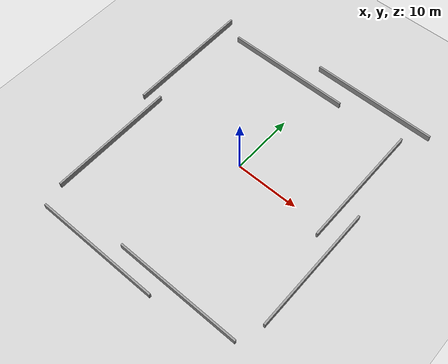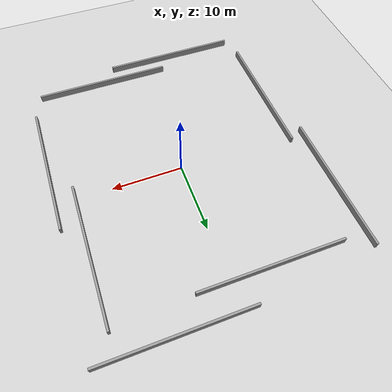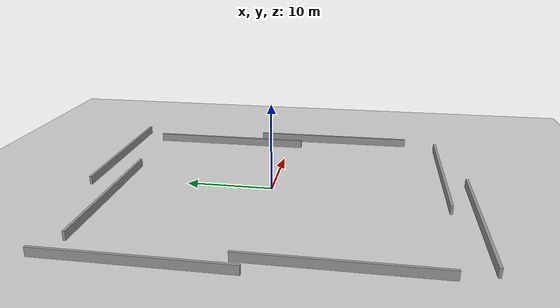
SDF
<sdf version="1.6">
 <world name="default">
  <include><uri>model://ground_plane</uri></include>
  <include><uri>model://sun</uri></include>
  <include>
   <uri>model://wallsatGasStation</uri>
   <name>walls_at_gas_station</name>
   <pose>0 0 0.5 0 0 0</pose>
  </include>
 </world>
</sdf>

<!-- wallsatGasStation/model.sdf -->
<sdf version='1.6'>
  <model name='wallsatGasStation'>
    <link name='link_0'>
      <pose frame=''>6.31651 -19.7182 0 0 -0 0</pose>
      <inertial>
        <mass>1</mass>
        <inertia>
          <ixx>0.166667</ixx>
          <ixy>0</ixy>
          <ixz>0</ixz>
          <iyy>0.166667</iyy>
          <iyz>0</iyz>
          <izz>0.166667</izz>
        </inertia>
        <pose frame=''>0 0 0 0 -0 0</pose>
      </inertial>
      <gravity>1</gravity>
      <self_collide>0</self_collide>
      <kinematic>0</kinematic>
      <visual name='visual'>
        <pose frame=''>0 0 0 0 -0 0</pose>
        <geometry>
          <box>
            <size>20 0.3 1</size>
          </box>
        </geometry>
        <material>
          <lighting>1</lighting>
          <script>
            <uri>file://media/materials/scripts/gazebo.material</uri>
            <name>Gazebo/Grey</name>
          </script>
          <shader type='pixel'>
            <normal_map>__default__</normal_map>
          </shader>
          <ambient>0.3 0.3 0.3 1</ambient>
          <diffuse>0.7 0.7 0.7 1</diffuse>
          <specular>0.01 0.01 0.01 1</specular>
          <emissive>0 0 0 1</emissive>
        </material>
        <transparency>0</transparency>
        <cast_shadows>1</cast_shadows>
      </visual>
      <collision name='collision'>
        <laser_retro>0</laser_retro>
        <max_contacts>10</max_contacts>
        <pose frame=''>0 0 0 0 -0 0</pose>
        <geometry>
          <box>
            <size>20 0.3 1</size>
          </box>
        </geometry>
        <surface>
          <friction>
            <ode>
              <mu>1</mu>
              <mu2>1</mu2>
              <fdir1>0 0 0</fdir1>
              <slip1>0</slip1>
              <slip2>0</slip2>
            </ode>
            <torsional>
              <coefficient>1</coefficient>
              <patch_radius>0</patch_radius>
              <surface_radius>0</surface_radius>
              <use_patch_radius>1</use_patch_radius>
              <ode>
                <slip>0</slip>
              </ode>
            </torsional>
          </friction>
          <bounce>
            <restitution_coefficient>0</restitution_coefficient>
            <threshold>1e+06</threshold>
          </bounce>
          <contact>
            <collide_without_contact>0</collide_without_contact>
            <collide_without_contact_bitmask>1</collide_without_contact_bitmask>
            <collide_bitmask>1</collide_bitmask>
            <ode>
              <soft_cfm>0</soft_cfm>
              <soft_erp>0.2</soft_erp>
              <kp>1e+13</kp>
              <kd>1</kd>
              <max_vel>0.01</max_vel>
              <min_depth>0</min_depth>
            </ode>
            <bullet>
              <split_impulse>1</split_impulse>
              <split_impulse_penetration_threshold>-0.01</split_impulse_penetration_threshold>
              <soft_cfm>0</soft_cfm>
              <soft_erp>0.2</soft_erp>
              <kp>1e+13</kp>
              <kd>1</kd>
            </bullet>
          </contact>
        </surface>
      </collision>
    </link>
    <link name='link_0_clone'>
      <pose frame=''>-5.83719 -22.2942 0 0 -0 0</pose>
      <inertial>
        <mass>1</mass>
        <inertia>
          <ixx>0.166667</ixx>
          <ixy>0</ixy>
          <ixz>0</ixz>
          <iyy>0.166667</iyy>
          <iyz>0</iyz>
          <izz>0.166667</izz>
        </inertia>
        <pose frame=''>0 0 0 0 -0 0</pose>
      </inertial>
      <self_collide>0</self_collide>
      <kinematic>0</kinematic>
      <visual name='visual'>
        <pose frame=''>0 0 0 0 -0 0</pose>
        <geometry>
          <box>
            <size>20 0.3 1</size>
          </box>
        </geometry>
        <material>
          <lighting>1</lighting>
          <script>
            <uri>file://media/materials/scripts/gazebo.material</uri>
            <name>Gazebo/Grey</name>
          </script>
          <shader type='pixel'>
            <normal_map>__default__</normal_map>
          </shader>
          <ambient>0.3 0.3 0.3 1</ambient>
          <diffuse>0.7 0.7 0.7 1</diffuse>
          <specular>0.01 0.01 0.01 1</specular>
          <emissive>0 0 0 1</emissive>
        </material>
        <transparency>0</transparency>
        <cast_shadows>1</cast_shadows>
      </visual>
      <collision name='collision'>
        <laser_retro>0</laser_retro>
        <max_contacts>10</max_contacts>
        <pose frame=''>0 0 0 0 -0 0</pose>
        <geometry>
          <box>
            <size>20 0.3 1</size>
          </box>
        </geometry>
        <surface>
          <friction>
            <ode>
              <mu>1</mu>
              <mu2>1</mu2>
              <fdir1>0 0 0</fdir1>
              <slip1>0</slip1>
              <slip2>0</slip2>
            </ode>
            <torsional>
              <coefficient>1</coefficient>
              <patch_radius>0</patch_radius>
              <surface_radius>0</surface_radius>
              <use_patch_radius>1</use_patch_radius>
              <ode>
                <slip>0</slip>
              </ode>
            </torsional>
          </friction>
          <bounce>
            <restitution_coefficient>0</restitution_coefficient>
            <threshold>1e+06</threshold>
          </bounce>
          <contact>
            <collide_without_contact>0</collide_without_contact>
            <collide_without_contact_bitmask>1</collide_without_contact_bitmask>
            <collide_bitmask>1</collide_bitmask>
            <ode>
              <soft_cfm>0</soft_cfm>
              <soft_erp>0.2</soft_erp>
              <kp>1e+13</kp>
              <kd>1</kd>
              <max_vel>0.01</max_vel>
              <min_depth>0</min_depth>
            </ode>
            <bullet>
              <split_impulse>1</split_impulse>
              <split_impulse_penetration_threshold>-0.01</split_impulse_penetration_threshold>
              <soft_cfm>0</soft_cfm>
              <soft_erp>0.2</soft_erp>
              <kp>1e+13</kp>
              <kd>1</kd>
            </bullet>
          </contact>
        </surface>
      </collision>
    </link>
    <link name='link_0_clone_0'>
      <pose frame=''>-5.5279 17.5634 0 0 -0 0</pose>
      <inertial>
        <mass>1</mass>
        <inertia>
          <ixx>0.166667</ixx>
          <ixy>0</ixy>
          <ixz>0</ixz>
          <iyy>0.166667</iyy>
          <iyz>0</iyz>
          <izz>0.166667</izz>
        </inertia>
        <pose frame=''>0 0 0 0 -0 0</pose>
      </inertial>
      <self_collide>0</self_collide>
      <kinematic>0</kinematic>
      <visual name='visual'>
        <pose frame=''>0 0 0 0 -0 0</pose>
        <geometry>
          <box>
            <size>20 0.3 1</size>
          </box>
        </geometry>
        <material>
          <lighting>1</lighting>
          <script>
            <uri>file://media/materials/scripts/gazebo.material</uri>
            <name>Gazebo/Grey</name>
          </script>
          <shader type='pixel'>
            <normal_map>__default__</normal_map>
          </shader>
          <ambient>0.3 0.3 0.3 1</ambient>
          <diffuse>0.7 0.7 0.7 1</diffuse>
          <specular>0.01 0.01 0.01 1</specular>
          <emissive>0 0 0 1</emissive>
        </material>
        <transparency>0</transparency>
        <cast_shadows>1</cast_shadows>
      </visual>
      <collision name='collision'>
        <laser_retro>0</laser_retro>
        <max_contacts>10</max_contacts>
        <pose frame=''>0 0 0 0 -0 0</pose>
        <geometry>
          <box>
            <size>20 0.3 1</size>
          </box>
        </geometry>
        <surface>
          <friction>
            <ode>
              <mu>1</mu>
              <mu2>1</mu2>
              <fdir1>0 0 0</fdir1>
              <slip1>0</slip1>
              <slip2>0</slip2>
            </ode>
            <torsional>
              <coefficient>1</coefficient>
              <patch_radius>0</patch_radius>
              <surface_radius>0</surface_radius>
              <use_patch_radius>1</use_patch_radius>
              <ode>
                <slip>0</slip>
              </ode>
            </torsional>
          </friction>
          <bounce>
            <restitution_coefficient>0</restitution_coefficient>
            <threshold>1e+06</threshold>
          </bounce>
          <contact>
            <collide_without_contact>0</collide_without_contact>
            <collide_without_contact_bitmask>1</collide_without_contact_bitmask>
            <collide_bitmask>1</collide_bitmask>
            <ode>
              <soft_cfm>0</soft_cfm>
              <soft_erp>0.2</soft_erp>
              <kp>1e+13</kp>
              <kd>1</kd>
              <max_vel>0.01</max_vel>
              <min_depth>0</min_depth>
            </ode>
            <bullet>
              <split_impulse>1</split_impulse>
              <split_impulse_penetration_threshold>-0.01</split_impulse_penetration_threshold>
              <soft_cfm>0</soft_cfm>
              <soft_erp>0.2</soft_erp>
              <kp>1e+13</kp>
              <kd>1</kd>
            </bullet>
          </contact>
        </surface>
      </collision>
    </link>
    <link name='link_0_clone_1'>
      <pose frame=''>7.9053 21.2295 0 0 -0 0</pose>
      <inertial>
        <mass>1</mass>
        <inertia>
          <ixx>0.166667</ixx>
          <ixy>0</ixy>
          <ixz>0</ixz>
          <iyy>0.166667</iyy>
          <iyz>0</iyz>
          <izz>0.166667</izz>
        </inertia>
        <pose frame=''>0 0 0 0 -0 0</pose>
      </inertial>
      <self_collide>0</self_collide>
      <kinematic>0</kinematic>
      <visual name='visual'>
        <pose frame=''>0 0 0 0 -0 0</pose>
        <geometry>
          <box>
            <size>20 0.3 1</size>
          </box>
        </geometry>
        <material>
          <lighting>1</lighting>
          <script>
            <uri>file://media/materials/scripts/gazebo.material</uri>
            <name>Gazebo/Grey</name>
          </script>
          <shader type='pixel'>
            <normal_map>__default__</normal_map>
          </shader>
          <ambient>0.3 0.3 0.3 1</ambient>
          <diffuse>0.7 0.7 0.7 1</diffuse>
          <specular>0.01 0.01 0.01 1</specular>
          <emissive>0 0 0 1</emissive>
        </material>
        <transparency>0</transparency>
        <cast_shadows>1</cast_shadows>
      </visual>
      <collision name='collision'>
        <laser_retro>0</laser_retro>
        <max_contacts>10</max_contacts>
        <pose frame=''>0 0 0 0 -0 0</pose>
        <geometry>
          <box>
            <size>20 0.3 1</size>
          </box>
        </geometry>
        <surface>
          <friction>
            <ode>
              <mu>1</mu>
              <mu2>1</mu2>
              <fdir1>0 0 0</fdir1>
              <slip1>0</slip1>
              <slip2>0</slip2>
            </ode>
            <torsional>
              <coefficient>1</coefficient>
              <patch_radius>0</patch_radius>
              <surface_radius>0</surface_radius>
              <use_patch_radius>1</use_patch_radius>
              <ode>
                <slip>0</slip>
              </ode>
            </torsional>
          </friction>
          <bounce>
            <restitution_coefficient>0</restitution_coefficient>
            <threshold>1e+06</threshold>
          </bounce>
          <contact>
            <collide_without_contact>0</collide_without_contact>
            <collide_without_contact_bitmask>1</collide_without_contact_bitmask>
            <collide_bitmask>1</collide_bitmask>
            <ode>
              <soft_cfm>0</soft_cfm>
              <soft_erp>0.2</soft_erp>
              <kp>1e+13</kp>
              <kd>1</kd>
              <max_vel>0.01</max_vel>
              <min_depth>0</min_depth>
            </ode>
            <bullet>
              <split_impulse>1</split_impulse>
              <split_impulse_penetration_threshold>-0.01</split_impulse_penetration_threshold>
              <soft_cfm>0</soft_cfm>
              <soft_erp>0.2</soft_erp>
              <kp>1e+13</kp>
              <kd>1</kd>
            </bullet>
          </contact>
        </surface>
      </collision>
    </link>
    <link name='link_0_clone_2'>
      <pose frame=''>14.9811 8.30761 0 0 -0 0</pose>
      <inertial>
        <mass>1</mass>
        <inertia>
          <ixx>0.166667</ixx>
          <ixy>0</ixy>
          <ixz>0</ixz>
          <iyy>0.166667</iyy>
          <iyz>0</iyz>
          <izz>0.166667</izz>
        </inertia>
        <pose frame=''>0 0 0 0 -0 0</pose>
      </inertial>
      <self_collide>0</self_collide>
      <kinematic>0</kinematic>
      <gravity>1</gravity>
      <visual name='visual'>
        <pose frame=''>0 0 0 0 -0 1.57</pose>
        <geometry>
          <box>
            <size>20 0.3 1</size>
          </box>
        </geometry>
        <material>
          <lighting>1</lighting>
          <script>
            <uri>file://media/materials/scripts/gazebo.material</uri>
            <name>Gazebo/Grey</name>
          </script>
          <shader type='pixel'>
            <normal_map>__default__</normal_map>
          </shader>
          <ambient>0.3 0.3 0.3 1</ambient>
          <diffuse>0.7 0.7 0.7 1</diffuse>
          <specular>0.01 0.01 0.01 1</specular>
          <emissive>0 0 0 1</emissive>
        </material>
        <transparency>0</transparency>
        <cast_shadows>1</cast_shadows>
      </visual>
      <collision name='collision'>
        <laser_retro>0</laser_retro>
        <max_contacts>10</max_contacts>
        <pose frame=''>0 0 0 0 -0 1.57</pose>
        <geometry>
          <box>
            <size>20 0.3 1</size>
          </box>
        </geometry>
        <surface>
          <friction>
            <ode>
              <mu>1</mu>
              <mu2>1</mu2>
              <fdir1>0 0 0</fdir1>
              <slip1>0</slip1>
              <slip2>0</slip2>
            </ode>
            <torsional>
              <coefficient>1</coefficient>
              <patch_radius>0</patch_radius>
              <surface_radius>0</surface_radius>
              <use_patch_radius>1</use_patch_radius>
              <ode>
                <slip>0</slip>
              </ode>
            </torsional>
          </friction>
          <bounce>
            <restitution_coefficient>0</restitution_coefficient>
            <threshold>1e+06</threshold>
          </bounce>
          <contact>
            <collide_without_contact>0</collide_without_contact>
            <collide_without_contact_bitmask>1</collide_without_contact_bitmask>
            <collide_bitmask>1</collide_bitmask>
            <ode>
              <soft_cfm>0</soft_cfm>
              <soft_erp>0.2</soft_erp>
              <kp>1e+13</kp>
              <kd>1</kd>
              <max_vel>0.01</max_vel>
              <min_depth>0</min_depth>
            </ode>
            <bullet>
              <split_impulse>1</split_impulse>
              <split_impulse_penetration_threshold>-0.01</split_impulse_penetration_threshold>
              <soft_cfm>0</soft_cfm>
              <soft_erp>0.2</soft_erp>
              <kp>1e+13</kp>
              <kd>1</kd>
            </bullet>
          </contact>
        </surface>
      </collision>
    </link>
    <link name='link_0_clone_2_clone'>
      <pose frame=''>17.6701 -5.85679 0 0 -0 0</pose>
      <inertial>
        <mass>1</mass>
        <inertia>
          <ixx>0.166667</ixx>
          <ixy>0</ixy>
          <ixz>0</ixz>
          <iyy>0.166667</iyy>
          <iyz>0</iyz>
          <izz>0.166667</izz>
        </inertia>
        <pose frame=''>0 0 0 0 -0 0</pose>
      </inertial>
      <self_collide>0</self_collide>
      <kinematic>0</kinematic>
      <visual name='visual'>
        <pose frame=''>0 0 0 0 -0 1.57</pose>
        <geometry>
          <box>
            <size>20 0.3 1</size>
          </box>
        </geometry>
        <material>
          <lighting>1</lighting>
          <script>
            <uri>file://media/materials/scripts/gazebo.material</uri>
            <name>Gazebo/Grey</name>
          </script>
          <shader type='pixel'>
            <normal_map>__default__</normal_map>
          </shader>
          <ambient>0.3 0.3 0.3 1</ambient>
          <diffuse>0.7 0.7 0.7 1</diffuse>
          <specular>0.01 0.01 0.01 1</specular>
          <emissive>0 0 0 1</emissive>
        </material>
        <transparency>0</transparency>
        <cast_shadows>1</cast_shadows>
      </visual>
      <collision name='collision'>
        <laser_retro>0</laser_retro>
        <max_contacts>10</max_contacts>
        <pose frame=''>0 0 0 0 -0 1.57</pose>
        <geometry>
          <box>
            <size>20 0.3 1</size>
          </box>
        </geometry>
        <surface>
          <friction>
            <ode>
              <mu>1</mu>
              <mu2>1</mu2>
              <fdir1>0 0 0</fdir1>
              <slip1>0</slip1>
              <slip2>0</slip2>
            </ode>
            <torsional>
              <coefficient>1</coefficient>
              <patch_radius>0</patch_radius>
              <surface_radius>0</surface_radius>
              <use_patch_radius>1</use_patch_radius>
              <ode>
                <slip>0</slip>
              </ode>
            </torsional>
          </friction>
          <bounce>
            <restitution_coefficient>0</restitution_coefficient>
            <threshold>1e+06</threshold>
          </bounce>
          <contact>
            <collide_without_contact>0</collide_without_contact>
            <collide_without_contact_bitmask>1</collide_without_contact_bitmask>
            <collide_bitmask>1</collide_bitmask>
            <ode>
              <soft_cfm>0</soft_cfm>
              <soft_erp>0.2</soft_erp>
              <kp>1e+13</kp>
              <kd>1</kd>
              <max_vel>0.01</max_vel>
              <min_depth>0</min_depth>
            </ode>
            <bullet>
              <split_impulse>1</split_impulse>
              <split_impulse_penetration_threshold>-0.01</split_impulse_penetration_threshold>
              <soft_cfm>0</soft_cfm>
              <soft_erp>0.2</soft_erp>
              <kp>1e+13</kp>
              <kd>1</kd>
            </bullet>
          </contact>
        </surface>
      </collision>
    </link>
    <link name='link_0_clone_2_clone_0'>
      <pose frame=''>-16.7041 -8.84806 0 0 -0 0</pose>
      <inertial>
        <mass>1</mass>
        <inertia>
          <ixx>0.166667</ixx>
          <ixy>0</ixy>
          <ixz>0</ixz>
          <iyy>0.166667</iyy>
          <iyz>0</iyz>
          <izz>0.166667</izz>
        </inertia>
        <pose frame=''>0 0 0 0 -0 0</pose>
      </inertial>
      <self_collide>0</self_collide>
      <kinematic>0</kinematic>
      <visual name='visual'>
        <pose frame=''>0 0 0 0 -0 1.57</pose>
        <geometry>
          <box>
            <size>20 0.3 1</size>
          </box>
        </geometry>
        <material>
          <lighting>1</lighting>
          <script>
            <uri>file://media/materials/scripts/gazebo.material</uri>
            <name>Gazebo/Grey</name>
          </script>
          <shader type='pixel'>
            <normal_map>__default__</normal_map>
          </shader>
          <ambient>0.3 0.3 0.3 1</ambient>
          <diffuse>0.7 0.7 0.7 1</diffuse>
          <specular>0.01 0.01 0.01 1</specular>
          <emissive>0 0 0 1</emissive>
        </material>
        <transparency>0</transparency>
        <cast_shadows>1</cast_shadows>
      </visual>
      <collision name='collision'>
        <laser_retro>0</laser_retro>
        <max_contacts>10</max_contacts>
        <pose frame=''>0 0 0 0 -0 1.57</pose>
        <geometry>
          <box>
            <size>20 0.3 1</size>
          </box>
        </geometry>
        <surface>
          <friction>
            <ode>
              <mu>1</mu>
              <mu2>1</mu2>
              <fdir1>0 0 0</fdir1>
              <slip1>0</slip1>
              <slip2>0</slip2>
            </ode>
            <torsional>
              <coefficient>1</coefficient>
              <patch_radius>0</patch_radius>
              <surface_radius>0</surface_radius>
              <use_patch_radius>1</use_patch_radius>
              <ode>
                <slip>0</slip>
              </ode>
            </torsional>
          </friction>
          <bounce>
            <restitution_coefficient>0</restitution_coefficient>
            <threshold>1e+06</threshold>
          </bounce>
          <contact>
            <collide_without_contact>0</collide_without_contact>
            <collide_without_contact_bitmask>1</collide_without_contact_bitmask>
            <collide_bitmask>1</collide_bitmask>
            <ode>
              <soft_cfm>0</soft_cfm>
              <soft_erp>0.2</soft_erp>
              <kp>1e+13</kp>
              <kd>1</kd>
              <max_vel>0.01</max_vel>
              <min_depth>0</min_depth>
            </ode>
            <bullet>
              <split_impulse>1</split_impulse>
              <split_impulse_penetration_threshold>-0.01</split_impulse_penetration_threshold>
              <soft_cfm>0</soft_cfm>
              <soft_erp>0.2</soft_erp>
              <kp>1e+13</kp>
              <kd>1</kd>
            </bullet>
          </contact>
        </surface>
      </collision>
    </link>
    <link name='link_0_clone_2_clone_1'>
      <pose frame=''>-18.8037 9.61683 0 0 -0 0</pose>
      <inertial>
        <mass>1</mass>
        <inertia>
          <ixx>0.166667</ixx>
          <ixy>0</ixy>
          <ixz>0</ixz>
          <iyy>0.166667</iyy>
          <iyz>0</iyz>
          <izz>0.166667</izz>
        </inertia>
        <pose frame=''>0 0 0 0 -0 0</pose>
      </inertial>
      <self_collide>0</self_collide>
      <kinematic>0</kinematic>
      <gravity>1</gravity>
      <visual name='visual'>
        <pose frame=''>0 0 0 0 -0 1.57</pose>
        <geometry>
          <box>
            <size>20 0.3 1</size>
          </box>
        </geometry>
        <material>
          <lighting>1</lighting>
          <script>
            <uri>file://media/materials/scripts/gazebo.material</uri>
            <name>Gazebo/Grey</name>
          </script>
          <shader type='pixel'>
            <normal_map>__default__</normal_map>
          </shader>
          <ambient>0.3 0.3 0.3 1</ambient>
          <diffuse>0.7 0.7 0.7 1</diffuse>
          <specular>0.01 0.01 0.01 1</specular>
          <emissive>0 0 0 1</emissive>
        </material>
        <transparency>0</transparency>
        <cast_shadows>1</cast_shadows>
      </visual>
      <collision name='collision'>
        <laser_retro>0</laser_retro>
        <max_contacts>10</max_contacts>
        <pose frame=''>0 0 0 0 -0 1.57</pose>
        <geometry>
          <box>
            <size>20 0.3 1</size>
          </box>
        </geometry>
        <surface>
          <friction>
            <ode>
              <mu>1</mu>
              <mu2>1</mu2>
              <fdir1>0 0 0</fdir1>
              <slip1>0</slip1>
              <slip2>0</slip2>
            </ode>
            <torsional>
              <coefficient>1</coefficient>
              <patch_radius>0</patch_radius>
              <surface_radius>0</surface_radius>
              <use_patch_radius>1</use_patch_radius>
              <ode>
                <slip>0</slip>
              </ode>
            </torsional>
          </friction>
          <bounce>
            <restitution_coefficient>0</restitution_coefficient>
            <threshold>1e+06</threshold>
          </bounce>
          <contact>
            <collide_without_contact>0</collide_without_contact>
            <collide_without_contact_bitmask>1</collide_without_contact_bitmask>
            <collide_bitmask>1</collide_bitmask>
            <ode>
              <soft_cfm>0</soft_cfm>
              <soft_erp>0.2</soft_erp>
              <kp>1e+13</kp>
              <kd>1</kd>
              <max_vel>0.01</max_vel>
              <min_depth>0</min_depth>
            </ode>
            <bullet>
              <split_impulse>1</split_impulse>
              <split_impulse_penetration_threshold>-0.01</split_impulse_penetration_threshold>
              <soft_cfm>0</soft_cfm>
              <soft_erp>0.2</soft_erp>
              <kp>1e+13</kp>
              <kd>1</kd>
            </bullet>
          </contact>
        </surface>
      </collision>
    </link>
    <joint name='link_0_clone_0_JOINT_0' type='fixed'>
      <parent>link_0_clone_0</parent>
      <child>link_0_clone_2_clone_1</child>
      <pose frame=''>0 0 0 0 -0 0</pose>
      <physics>
        <ode>
          <limit>
            <cfm>0</cfm>
            <erp>0.2</erp>
          </limit>
          <suspension>
            <cfm>0</cfm>
            <erp>0.2</erp>
          </suspension>
        </ode>
      </physics>
    </joint>
    <joint name='link_0_clone_0_JOINT_1' type='fixed'>
      <parent>link_0_clone_0</parent>
      <child>link_0_clone_1</child>
      <pose frame=''>0 0 0 0 -0 0</pose>
      <physics>
        <ode>
          <limit>
            <cfm>0</cfm>
            <erp>0.2</erp>
          </limit>
          <suspension>
            <cfm>0</cfm>
            <erp>0.2</erp>
          </suspension>
        </ode>
      </physics>
    </joint>
    <joint name='link_0_clone_0_JOINT_2' type='fixed'>
      <parent>link_0_clone_0</parent>
      <child>link_0_clone_2</child>
      <pose frame=''>0 0 0 0 -0 0</pose>
      <physics>
        <ode>
          <limit>
            <cfm>0</cfm>
            <erp>0.2</erp>
          </limit>
          <suspension>
            <cfm>0</cfm>
            <erp>0.2</erp>
          </suspension>
        </ode>
      </physics>
    </joint>
    <joint name='link_0_clone_0_JOINT_3' type='fixed'>
      <parent>link_0_clone_0</parent>
      <child>link_0_clone_2_clone</child>
      <pose frame=''>0 0 0 0 -0 0</pose>
      <physics>
        <ode>
          <limit>
            <cfm>0</cfm>
            <erp>0.2</erp>
          </limit>
          <suspension>
            <cfm>0</cfm>
            <erp>0.2</erp>
          </suspension>
        </ode>
      </physics>
    </joint>
    <joint name='link_0_clone_0_JOINT_4' type='fixed'>
      <parent>link_0_clone_0</parent>
      <child>link_0</child>
      <pose frame=''>0 0 0 0 -0 0</pose>
      <physics>
        <ode>
          <limit>
            <cfm>0</cfm>
            <erp>0.2</erp>
          </limit>
          <suspension>
            <cfm>0</cfm>
            <erp>0.2</erp>
          </suspension>
        </ode>
      </physics>
    </joint>
    <joint name='link_0_clone_0_JOINT_5' type='fixed'>
      <parent>link_0_clone_0</parent>
      <child>link_0_clone</child>
      <pose frame=''>0 0 0 0 -0 0</pose>
      <physics>
        <ode>
          <limit>
            <cfm>0</cfm>
            <erp>0.2</erp>
          </limit>
          <suspension>
            <cfm>0</cfm>
            <erp>0.2</erp>
          </suspension>
        </ode>
      </physics>
    </joint>
    <joint name='link_0_clone_0_JOINT_6' type='fixed'>
      <parent>link_0_clone_0</parent>
      <child>link_0_clone_2_clone_0</child>
      <pose frame=''>0 0 0 0 -0 0</pose>
      <physics>
        <ode>
          <limit>
            <cfm>0</cfm>
            <erp>0.2</erp>
          </limit>
          <suspension>
            <cfm>0</cfm>
            <erp>0.2</erp>
          </suspension>
        </ode>
      </physics>
    </joint>
    <static>0</static>
    <allow_auto_disable>1</allow_auto_disable>
  </model>
</sdf>
